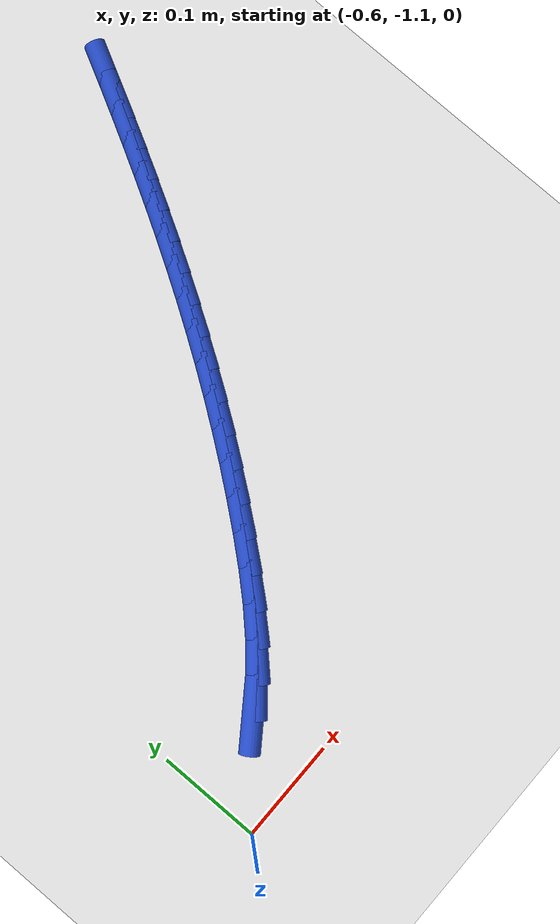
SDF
<sdf version="1.6">
 <world name="default">
  <model name="ground_plane">
   <static>1</static>
   <link name="link">
    <collision name="collision">
     <geometry><plane><normal>0 0 1</normal><size>100 100</size></plane></geometry>
     <surface><friction><ode><mu>100</mu><mu2>50</mu2></ode></friction></surface>
    </collision>
    <visual name="visual">
     <cast_shadows>0</cast_shadows>
     <geometry><plane><normal>0 0 1</normal><size>100 100</size></plane></geometry>
     <material>
      <script><uri>file://media/materials/scripts/gazebo.material</uri><name>Gazebo/WhiteGlow</name></script>
     </material>
    </visual>
   </link>
  </model>
  <model name="line">
   <link name="link_192">
    <pose>-0.5137097894453974 -1.028013848317149 0.01 0 1.57 0.6172151001881347</pose>
    <collision name="collision">
     <geometry><cylinder><radius>0.01</radius><length>0.08</length></cylinder></geometry>
    </collision>
    <visual name="visual">
     <material>
      <script><name>Gazebo/Blue</name><uri>file://media/materials/scripts/gazebo.material</uri></script>
     </material>
     <geometry><cylinder><radius>0.01</radius><length>0.08</length></cylinder></geometry>
    </visual>
   </link>
   <link name="link_193">
    <pose>-0.488739238442856 -1.0102919219236683 0.01 0 1.57 0.7065220460913006</pose>
    <collision name="collision">
     <geometry><cylinder><radius>0.01</radius><length>0.08</length></cylinder></geometry>
    </collision>
    <visual name="visual">
     <material>
      <script><name>Gazebo/Blue</name><uri>file://media/materials/scripts/gazebo.material</uri></script>
     </material>
     <geometry><cylinder><radius>0.01</radius><length>0.08</length></cylinder></geometry>
    </visual>
   </link>
   <link name="link_194">
    <pose>-0.46485858877384234 -0.9899098056888709 0.01 0 1.57 0.7760042204770808</pose>
    <collision name="collision">
     <geometry><cylinder><radius>0.01</radius><length>0.08</length></cylinder></geometry>
    </collision>
    <visual name="visual">
     <material>
      <script><name>Gazebo/Blue</name><uri>file://media/materials/scripts/gazebo.material</uri></script>
     </material>
     <geometry><cylinder><radius>0.01</radius><length>0.08</length></cylinder></geometry>
    </visual>
   </link>
   <link name="link_195">
    <pose>-0.44199140161828904 -0.9674682587159592 0.01 0 1.57 0.8283575059120087</pose>
    <collision name="collision">
     <geometry><cylinder><radius>0.01</radius><length>0.08</length></cylinder></geometry>
    </collision>
    <visual name="visual">
     <material>
      <script><name>Gazebo/Blue</name><uri>file://media/materials/scripts/gazebo.material</uri></script>
     </material>
     <geometry><cylinder><radius>0.01</radius><length>0.08</length></cylinder></geometry>
    </visual>
   </link>
   <link name="link_196">
    <pose>-0.4200612381561288 -0.9435680401081364 0.01 0 1.57 0.8657124166220592</pose>
    <collision name="collision">
     <geometry><cylinder><radius>0.01</radius><length>0.08</length></cylinder></geometry>
    </collision>
    <visual name="visual">
     <material>
      <script><name>Gazebo/Blue</name><uri>file://media/materials/scripts/gazebo.material</uri></script>
     </material>
     <geometry><cylinder><radius>0.01</radius><length>0.08</length></cylinder></geometry>
    </visual>
   </link>
   <link name="link_197">
    <pose>-0.3989916595672939 -0.9188099089686048 0.01 0 1.57 0.8903401550469535</pose>
    <collision name="collision">
     <geometry><cylinder><radius>0.01</radius><length>0.08</length></cylinder></geometry>
    </collision>
    <visual name="visual">
     <material>
      <script><name>Gazebo/Blue</name><uri>file://media/materials/scripts/gazebo.material</uri></script>
     </material>
     <geometry><cylinder><radius>0.01</radius><length>0.08</length></cylinder></geometry>
    </visual>
   </link>
   <link name="link_198">
    <pose>-0.37870839457357247 -0.893750777810617 0.01 0 1.57 0.9104530261310975</pose>
    <collision name="collision">
     <geometry><cylinder><radius>0.01</radius><length>0.08</length></cylinder></geometry>
    </collision>
    <visual name="visual">
     <material>
      <script><name>Gazebo/Blue</name><uri>file://media/materials/scripts/gazebo.material</uri></script>
     </material>
     <geometry><cylinder><radius>0.01</radius><length>0.08</length></cylinder></geometry>
    </visual>
   </link>
   <link name="link_199">
    <pose>-0.3591555837316857 -0.8685751113559402 0.01 0 1.57 0.9299022022337207</pose>
    <collision name="collision">
     <geometry><cylinder><radius>0.01</radius><length>0.08</length></cylinder></geometry>
    </collision>
    <visual name="visual">
     <material>
      <script><name>Gazebo/Blue</name><uri>file://media/materials/scripts/gazebo.material</uri></script>
     </material>
     <geometry><cylinder><radius>0.01</radius><length>0.08</length></cylinder></geometry>
    </visual>
   </link>
   <link name="link_200">
    <pose>-0.34028665875507225 -0.8432794261499654 0.01 0 1.57 0.9486234032786368</pose>
    <collision name="collision">
     <geometry><cylinder><radius>0.01</radius><length>0.08</length></cylinder></geometry>
    </collision>
    <visual name="visual">
     <material>
      <script><name>Gazebo/Blue</name><uri>file://media/materials/scripts/gazebo.material</uri></script>
     </material>
     <geometry><cylinder><radius>0.01</radius><length>0.08</length></cylinder></geometry>
    </visual>
   </link>
   <link name="link_201">
    <pose>-0.32205512267924247 -0.8178587959841045 0.01 0 1.57 0.9665270948354274</pose>
    <collision name="collision">
     <geometry><cylinder><radius>0.01</radius><length>0.08</length></cylinder></geometry>
    </collision>
    <visual name="visual">
     <material>
      <script><name>Gazebo/Blue</name><uri>file://media/materials/scripts/gazebo.material</uri></script>
     </material>
     <geometry><cylinder><radius>0.01</radius><length>0.08</length></cylinder></geometry>
    </visual>
   </link>
   <link name="link_202">
    <pose>-0.30441447853970766 -0.7923082946497715 0.01 0 1.57 0.983529463346948</pose>
    <collision name="collision">
     <geometry><cylinder><radius>0.01</radius><length>0.08</length></cylinder></geometry>
    </collision>
    <visual name="visual">
     <material>
      <script><name>Gazebo/Blue</name><uri>file://media/materials/scripts/gazebo.material</uri></script>
     </material>
     <geometry><cylinder><radius>0.01</radius><length>0.08</length></cylinder></geometry>
    </visual>
   </link>
   <link name="link_203">
    <pose>-0.2873182293719782 -0.7666229959383781 0.01 0 1.57 0.999553348967935</pose>
    <collision name="collision">
     <geometry><cylinder><radius>0.01</radius><length>0.08</length></cylinder></geometry>
    </collision>
    <visual name="visual">
     <material>
      <script><name>Gazebo/Blue</name><uri>file://media/materials/scripts/gazebo.material</uri></script>
     </material>
     <geometry><cylinder><radius>0.01</radius><length>0.08</length></cylinder></geometry>
    </visual>
   </link>
   <link name="link_204">
    <pose>-0.2707198782115645 -0.7407979736413367 0.01 0 1.57 1.0145289929248673</pose>
    <collision name="collision">
     <geometry><cylinder><radius>0.01</radius><length>0.08</length></cylinder></geometry>
    </collision>
    <visual name="visual">
     <material>
      <script><name>Gazebo/Blue</name><uri>file://media/materials/scripts/gazebo.material</uri></script>
     </material>
     <geometry><cylinder><radius>0.01</radius><length>0.08</length></cylinder></geometry>
    </visual>
   </link>
   <link name="link_205">
    <pose>-0.2545729280939773 -0.7148283015500599 0.01 0 1.57 1.028394593157051</pose>
    <collision name="collision">
     <geometry><cylinder><radius>0.01</radius><length>0.08</length></cylinder></geometry>
    </collision>
    <visual name="visual">
     <material>
      <script><name>Gazebo/Blue</name><uri>file://media/materials/scripts/gazebo.material</uri></script>
     </material>
     <geometry><cylinder><radius>0.01</radius><length>0.08</length></cylinder></geometry>
    </visual>
   </link>
   <link name="link_206">
    <pose>-0.23883088205472663 -0.6887090534559595 0.01 0 1.57 1.0410966718829588</pose>
    <collision name="collision">
     <geometry><cylinder><radius>0.01</radius><length>0.08</length></cylinder></geometry>
    </collision>
    <visual name="visual">
     <material>
      <script><name>Gazebo/Blue</name><uri>file://media/materials/scripts/gazebo.material</uri></script>
     </material>
     <geometry><cylinder><radius>0.01</radius><length>0.08</length></cylinder></geometry>
    </visual>
   </link>
   <link name="link_207">
    <pose>-0.22344724312932415 -0.6624353031504494 0.01 0 1.57 1.0525902671123084</pose>
    <collision name="collision">
     <geometry><cylinder><radius>0.01</radius><length>0.08</length></cylinder></geometry>
    </collision>
    <visual name="visual">
     <material>
      <script><name>Gazebo/Blue</name><uri>file://media/materials/scripts/gazebo.material</uri></script>
     </material>
     <geometry><cylinder><radius>0.01</radius><length>0.08</length></cylinder></geometry>
    </visual>
   </link>
   <link name="link_208">
    <pose>-0.2083755143532798 -0.6360021244249413 0.01 0 1.57 1.0628389665332036</pose>
    <collision name="collision">
     <geometry><cylinder><radius>0.01</radius><length>0.08</length></cylinder></geometry>
    </collision>
    <visual name="visual">
     <material>
      <script><name>Gazebo/Blue</name><uri>file://media/materials/scripts/gazebo.material</uri></script>
     </material>
     <geometry><cylinder><radius>0.01</radius><length>0.08</length></cylinder></geometry>
    </visual>
   </link>
   <link name="link_209">
    <pose>-0.19356919876210443 -0.6094045910708482 0.01 0 1.57 1.0718148064425779</pose>
    <collision name="collision">
     <geometry><cylinder><radius>0.01</radius><length>0.08</length></cylinder></geometry>
    </collision>
    <visual name="visual">
     <material>
      <script><name>Gazebo/Blue</name><uri>file://media/materials/scripts/gazebo.material</uri></script>
     </material>
     <geometry><cylinder><radius>0.01</radius><length>0.08</length></cylinder></geometry>
    </visual>
   </link>
   <link name="link_210">
    <pose>-0.17898179939130798 -0.5826377768795811 0.01 0 1.57 1.0794980604889033</pose>
    <collision name="collision">
     <geometry><cylinder><radius>0.01</radius><length>0.08</length></cylinder></geometry>
    </collision>
    <visual name="visual">
     <material>
      <script><name>Gazebo/Blue</name><uri>file://media/materials/scripts/gazebo.material</uri></script>
     </material>
     <geometry><cylinder><radius>0.01</radius><length>0.08</length></cylinder></geometry>
    </visual>
   </link>
   <link name="link_211">
    <pose>-0.16456681927640207 -0.5556967556425546 0.01 0 1.57 1.0858769431748634</pose>
    <collision name="collision">
     <geometry><cylinder><radius>0.01</radius><length>0.08</length></cylinder></geometry>
    </collision>
    <visual name="visual">
     <material>
      <script><name>Gazebo/Blue</name><uri>file://media/materials/scripts/gazebo.material</uri></script>
     </material>
     <geometry><cylinder><radius>0.01</radius><length>0.08</length></cylinder></geometry>
    </visual>
   </link>
  </model>
 </world>
</sdf>
